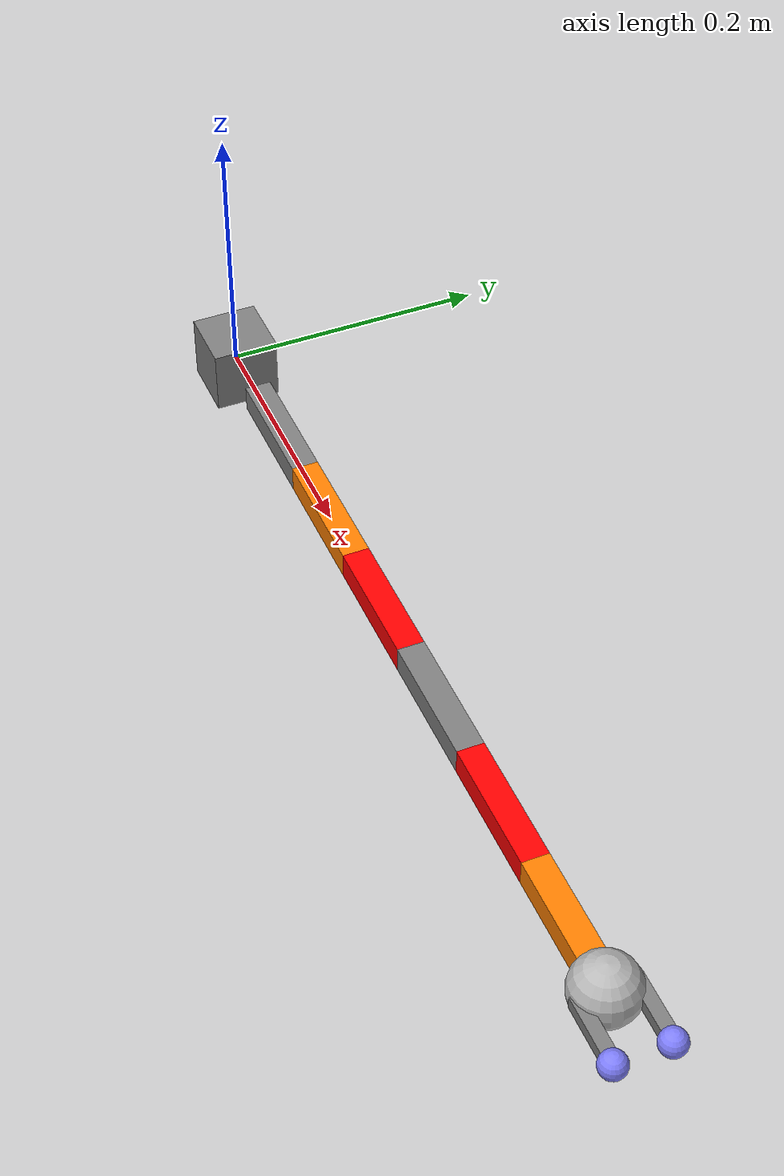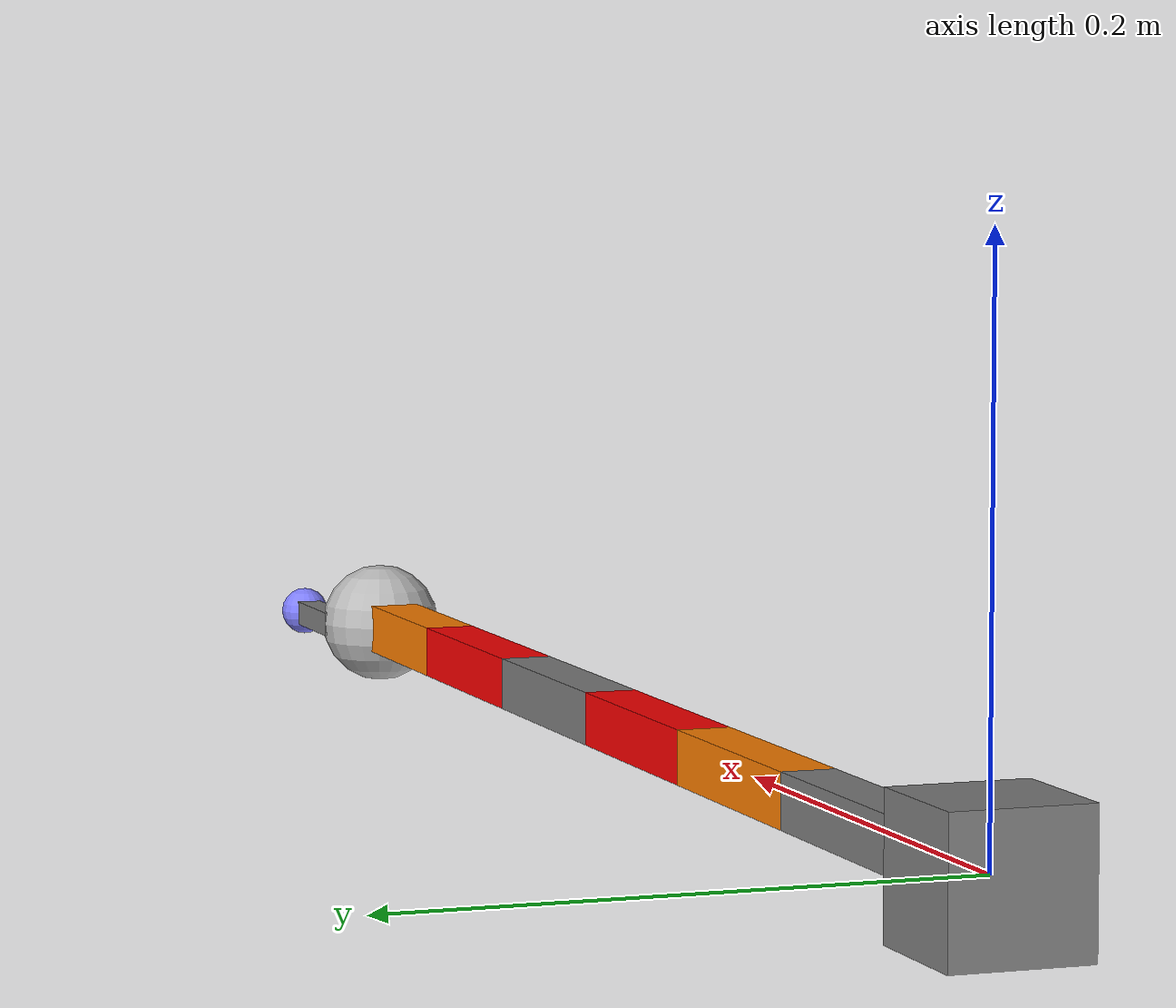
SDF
<?xml version="1.0" ?>
<sdf version='1.5'>
  <model name='ARM'>
    <plugin name="PacerPlugin" filename="libPacerGazeboPlugin.so"/>
    <pose>0 0 0 0 0 0</pose>

    <!-- =============================== LF leg =============================== -->
    <link name='LINK_0'>
      <pose>0 0 0 0 0 0</pose>
      <inertial>
        <mass>1</mass>
        <inertia>
          <ixx>1.5e-5</ixx>
          <ixy>0.0</ixy>
          <ixz>-0.0</ixz>
          <iyy>3e-5</iyy>
          <iyz>-0.0</iyz>
          <izz>3e-5</izz>
        </inertia>
      </inertial>

      <visual name='link_visual'>
        <geometry>
          <box>
            <size>0.05 0.05 0.05</size>
          </box>
        </geometry>
        <material>
          <ambient>0.2 0.2 0.2 1</ambient>
          <diffuse>0.5 0.5 0.5 1</diffuse>
          <specular>0.1 0.1 0.1 1</specular>
          <emissive>0 0 0 0</emissive>
        </material>
      </visual>
    </link>

    <joint name='X_1' type='revolute'>
      <pose>-0.05 0 0 0 0 0</pose>
      <parent>LINK_0</parent>
      <child>LINK_1</child>
      <axis>
        <xyz>1 0 0</xyz>
        <limit>
          <lower>-1e6</lower>
          <upper>1e6</upper>
        </limit>
        <dynamics/>
      </axis>
    </joint>

    <link name='LINK_1'>
      <pose>0.1 0 0 0 0 0</pose>
      <inertial>
        <mass>0.10</mass>
        <inertia>
          <ixx>1.5e-5</ixx>
          <ixy>0.0</ixy>
          <ixz>-0.0</ixz>
          <iyy>3e-5</iyy>
          <iyz>-0.0</iyz>
          <izz>3e-5</izz>
        </inertia>
      </inertial>

      <visual name='link_visual'>
        <geometry>
          <box>
            <size>0.1 0.02 0.02</size>
          </box>
        </geometry>
        <material>
          <ambient>0.2 0.2 0.2 1</ambient>
          <diffuse>0.5 0.5 0.5 1</diffuse>
          <specular>0.1 0.1 0.1 1</specular>
          <emissive>0 0 0 0</emissive>
        </material>
      </visual>
    </link>

    <joint name='Y_2' type='revolute'>
      <pose>-0.05 0 0 0 0 0</pose>
      <parent>LINK_1</parent>
      <child>LINK_2</child>
      <axis>
        <xyz>0 1 0</xyz>
        <limit>
          <lower>-1e6</lower>
          <upper>1e6</upper>
        </limit>
        <dynamics/>
      </axis>
    </joint>

    <link name='LINK_2'>
      <pose>0.2 0 0 0 0 0</pose>
      <inertial>
        <mass>0.10</mass>
        <inertia>
          <ixx>1.083e-5</ixx>
          <ixy>0.0</ixy>
          <ixz>-0.0</ixz>
          <iyy>0.0001233</iyy>
          <iyz>-0.0</iyz>
          <izz>0.001275</izz>
        </inertia>
      </inertial>

      <visual name='link_visual'>
        <geometry>
          <box>
            <size>0.1 0.02 0.02</size>
          </box>
        </geometry>
        <material>
          <ambient>0.2 0.2 0.2 1</ambient>
          <diffuse>1 0.5 0   1</diffuse>
          <specular>0.1 0.1 0.1 1</specular>
          <emissive>0 0 0 0</emissive>
        </material>
      </visual>
    </link>

    <joint name='Z_3' type='revolute'>
      <pose>-0.05 0 0 0 0 0</pose>
      <parent>LINK_2</parent>
      <child>LINK_3</child>
      <axis>
        <xyz>0 0 1</xyz>
        <limit>
          <lower>-1e6</lower>
          <upper>1e6</upper>
        </limit>
        <dynamics/>
      </axis>
    </joint>

    <link name='LINK_3'>
      <pose>0.3 0 0 0 0 0</pose>
      <inertial>
        <mass>0.10</mass>
        <inertia>
          <ixx>1.083e-5</ixx>
          <ixy>0.0</ixy>
          <ixz>-0.0</ixz>
          <iyy>0.0001233</iyy>
          <iyz>-0.0</iyz>
          <izz>0.001275</izz>
        </inertia>
      </inertial>

      <visual name='link_visual'>
        <geometry>
          <box>
            <size>0.1 0.02 0.02</size>
          </box>
        </geometry>
        <material>
          <ambient>0.2 0.2 0.2 1</ambient>
          <diffuse>1 0 0   1</diffuse>
          <specular>0.1 0.1 0.1 1</specular>
          <emissive>0 0 0 0</emissive>
        </material>
      </visual>
    </link>

    <!-- 2nd 3 dof of arm -->

    <joint name='X_4' type='revolute'>
      <pose>-0.05 0 0 0 0 0</pose>
      <parent>LINK_3</parent>
      <child>LINK_4</child>
      <axis>
        <xyz>1 0 0</xyz>
        <limit>
          <lower>-1e6</lower>
          <upper>1e6</upper>
        </limit>
        <dynamics/>
      </axis>
    </joint>

    <link name='LINK_4'>
      <pose>0.4 0 0 0 0 0</pose>
      <inertial>
        <mass>0.10</mass>
        <inertia>
          <ixx>1.5e-5</ixx>
          <ixy>0.0</ixy>
          <ixz>-0.0</ixz>
          <iyy>3e-5</iyy>
          <iyz>-0.0</iyz>
          <izz>3e-5</izz>
        </inertia>
      </inertial>

      <visual name='link_visual'>
        <geometry>
          <box>
            <size>0.1 0.02 0.02</size>
          </box>
        </geometry>
        <material>
          <ambient>0.2 0.2 0.2 1</ambient>
          <diffuse>0.5 0.5 0.5 1</diffuse>
          <specular>0.1 0.1 0.1 1</specular>
          <emissive>0 0 0 0</emissive>
        </material>
      </visual>
    </link>

    <joint name='Y_5' type='revolute'>
      <pose>-0.05 0 0 0 0 0</pose>
      <parent>LINK_4</parent>
      <child>LINK_5</child>
      <axis>
        <xyz>0 1 0</xyz>
        <limit>
          <lower>-1e6</lower>
          <upper>1e6</upper>
        </limit>
        <dynamics/>
      </axis>
    </joint>

    <link name='LINK_5'>
      <pose>0.5 0 0 0 0 0</pose>
      <inertial>
        <mass>0.10</mass>
        <inertia>
          <ixx>1.083e-5</ixx>
          <ixy>0.0</ixy>
          <ixz>-0.0</ixz>
          <iyy>0.0001233</iyy>
          <iyz>-0.0</iyz>
          <izz>0.001275</izz>
        </inertia>
      </inertial>

      <visual name='link_visual'>
        <geometry>
          <box>
            <size>0.1 0.02 0.02</size>
          </box>
        </geometry>
        <material>
          <ambient>0.2 0.2 0.2 1</ambient>
          <diffuse>1 0 0   1</diffuse>
          <specular>0.1 0.1 0.1 1</specular>
          <emissive>0 0 0 0</emissive>
        </material>
      </visual>
    </link>

    <joint name='Z_6' type='revolute'>
      <pose>-0.05 0 0 0 0 0</pose>
      <parent>LINK_5</parent>
      <child>LINK_6</child>
      <axis>
        <xyz>0 0 1</xyz>
        <limit>
          <lower>-1e6</lower>
          <upper>1e6</upper>
        </limit>
        <dynamics/>
      </axis>
    </joint>

    <link name='LINK_6'>
      <pose>0.6 0 0 0 0 0</pose>
      <inertial>
        <mass>0.10</mass>
        <inertia>
          <ixx>1.083e-5</ixx>
          <ixy>0.0</ixy>
          <ixz>-0.0</ixz>
          <iyy>0.0001233</iyy>
          <iyz>-0.0</iyz>
          <izz>0.001275</izz>
        </inertia>
      </inertial>

      <visual name='link_visual'>
        <geometry>
          <box>
            <size>0.1 0.02 0.02</size>
          </box>
        </geometry>
        <material>
          <ambient>0.2 0.2 0.2 1</ambient>
          <diffuse>1 0.5 0   1</diffuse>
          <specular>0.1 0.1 0.1 1</specular>
          <emissive>0 0 0 0</emissive>
        </material>
      </visual>
    </link>

    <joint name='X_7' type='revolute'>
      <pose>0 0 0 0 0 0</pose>
      <parent>LINK_6</parent>
      <child>HAND</child>
      <axis>
        <xyz>1 0 0</xyz>
        <limit>
          <lower>-1e6</lower>
          <upper>1e6</upper>
        </limit>
        <dynamics/>
      </axis>
    </joint>

    <link name='HAND'>
      <pose>0.65 0 0 0 0 0</pose>
      <inertial>
        <pose>0 0 0 0 0 0</pose>
        <mass>0.10</mass>
        <inertia>
          <ixx>3.358e-5</ixx>
          <ixy>0</ixy>
          <ixz>0</ixz>
          <iyy>3.358e-5</iyy>
          <iyz>0</iyz>
          <izz>3.358e-5</izz>
        </inertia>
      </inertial>

      <visual name='HAND_visual'>
        <pose>0 0 0 0 0 0</pose>
        <geometry>
          <sphere>
            <radius>0.025</radius>
          </sphere>
        </geometry>
      </visual>
    </link>

    <joint name='F_00' type='revolute'>
      <pose>-0.05 0 0 0 0 0</pose>
      <parent>HAND</parent>
      <child>FINGER00</child>
      <axis>
        <xyz>0 1 0</xyz>
        <limit>
          <lower>-1e6</lower>
          <upper>1e6</upper>
        </limit>
        <dynamics/>
      </axis>
    </joint>
    <joint name='F_01' type='revolute'>
      <pose>-0.05 0 0 0 0 0</pose>
      <parent>HAND</parent>
      <child>FINGER01</child>
      <axis>
        <xyz>0 1 0</xyz>
        <limit>
          <lower>-1e6</lower>
          <upper>1e6</upper>
        </limit>
        <dynamics/>
      </axis>
    </joint>
    <joint name='F_10' type='revolute'>
      <pose>-0.05 0 0 0 0 0</pose>
      <parent>HAND</parent>
      <child>FINGER10</child>
      <axis>
        <xyz>0 -1 0</xyz>
        <limit>
          <lower>-1e6</lower>
          <upper>1e6</upper>
        </limit>
        <dynamics/>
      </axis>
    </joint>
    <joint name='F_11' type='revolute'>
      <pose>-0.05 0 0 0 0 0</pose>
      <parent>HAND</parent>
      <child>FINGER11</child>
      <axis>
        <xyz>0 -1 0</xyz>
        <limit>
          <lower>-1e6</lower>
          <upper>1e6</upper>
        </limit>
        <dynamics/>
      </axis>
    </joint>

    <link name='FINGER00'>
      <pose>0.70 -0.02 0 0 0 0</pose>
      <inertial>
        <pose>0 0 0 0 0 0</pose>
        <mass>0.10</mass>
        <inertia>
          <ixx>3.358e-5</ixx>
          <ixy>0</ixy>
          <ixz>0</ixz>
          <iyy>3.358e-5</iyy>
          <iyz>0</iyz>
          <izz>3.358e-5</izz>
        </inertia>
      </inertial>

      <visual name='FINGER_tip_visual'>
        <pose>0 0 0 0 0 0</pose>
        <geometry>
          <sphere>
            <radius>0.01</radius>
          </sphere>
        </geometry>
        <material>
          <ambient> 0.2 0.2 0.2 1</ambient>
          <diffuse> 0.5 0.5 1.0 0</diffuse>
          <specular>0.1 0.1 0.1 1</specular>
          <emissive>0 0 0 0</emissive>
        </material>
      </visual>

      <visual name='FINGER_visual'>
        <pose>-0.025 0 0 0 0 0</pose>
        <geometry>
          <box>
            <size>0.05 0.01 0.01</size>
          </box>
        </geometry>
        <material>
          <ambient> 0.2 0.2 0.2 1</ambient>
          <diffuse> 0.5 0.5 0.5 1</diffuse>
          <specular>0.1 0.1 0.1 1</specular>
          <emissive>0 0 0 0</emissive>
        </material>
      </visual>

      <collision name='FINGER_collision'>
        <pose>0 0 0 0 0 0</pose>
        <geometry>
          <sphere>
            <radius>0.01</radius>
          </sphere>
        </geometry>
        <surface>
          <restitution_coefficient>0</restitution_coefficient>
          <friction>
            <ode>
              <mu>100</mu>
              <mu2>100</mu2>
            </ode>
          </friction>
        </surface>
      </collision>

      <sensor name='FINGER_contact' type='contact'>
        <contact>
          <collision>FINGER_collision</collision>
        </contact>
        <update_rate>1000</update_rate>
      </sensor>
    </link>
    <link name='FINGER01'>
      <pose>0.70 0.02 0 0 0 0</pose>
      <inertial>
        <pose>0 0 0 0 0 0</pose>
        <mass>0.10</mass>
        <inertia>
          <ixx>3.358e-5</ixx>
          <ixy>0</ixy>
          <ixz>0</ixz>
          <iyy>3.358e-5</iyy>
          <iyz>0</iyz>
          <izz>3.358e-5</izz>
        </inertia>
      </inertial>

      <visual name='FINGER_tip_visual'>
        <pose>0 0 0 0 0 0</pose>
        <geometry>
          <sphere>
            <radius>0.01</radius>
          </sphere>
        </geometry>
        <material>
          <ambient> 0.2 0.2 0.2 1</ambient>
          <diffuse> 0.5 0.5 1.0 0</diffuse>
          <specular>0.1 0.1 0.1 1</specular>
          <emissive>0 0 0 0</emissive>
        </material>
      </visual>

      <visual name='FINGER_visual'>
        <pose>-0.025 0 0 0 0 0</pose>
        <geometry>
          <box>
            <size>0.05 0.01 0.01</size>
          </box>
        </geometry>
        <material>
          <ambient> 0.2 0.2 0.2 1</ambient>
          <diffuse> 0.5 0.5 0.5 1</diffuse>
          <specular>0.1 0.1 0.1 1</specular>
          <emissive>0 0 0 0</emissive>
        </material>
      </visual>

      <collision name='FINGER_collision'>
        <pose>0 0 0 0 0 0</pose>
        <geometry>
          <sphere>
            <radius>0.01</radius>
          </sphere>
        </geometry>
        <surface>
          <restitution_coefficient>0</restitution_coefficient>
          <friction>
            <ode>
              <mu>100</mu>
              <mu2>100</mu2>
            </ode>
          </friction>
        </surface>
      </collision>

      <sensor name='FINGER_contact' type='contact'>
        <contact>
          <collision>FINGER_collision</collision>
        </contact>
        <update_rate>1000</update_rate>
      </sensor>
    </link>
    <link name='FINGER10'>
      <pose>0.70 -0.02 0 0 0 0</pose>
      <inertial>
        <pose>0 0 0 0 0 0</pose>
        <mass>0.10</mass>
        <inertia>
          <ixx>3.358e-5</ixx>
          <ixy>0</ixy>
          <ixz>0</ixz>
          <iyy>3.358e-5</iyy>
          <iyz>0</iyz>
          <izz>3.358e-5</izz>
        </inertia>
      </inertial>

      <visual name='FINGER_tip_visual'>
        <pose>0 0 0 0 0 0</pose>
        <geometry>
          <sphere>
            <radius>0.01</radius>
          </sphere>
        </geometry>
        <material>
          <ambient> 0.2 0.2 0.2 1</ambient>
          <diffuse> 0.5 0.5 1.0 0</diffuse>
          <specular>0.1 0.1 0.1 1</specular>
          <emissive>0 0 0 0</emissive>
        </material>
      </visual>

      <visual name='FINGER_visual'>
        <pose>-0.025 0 0 0 0 0</pose>
        <geometry>
          <box>
            <size>0.05 0.01 0.01</size>
          </box>
        </geometry>
        <material>
          <ambient> 0.2 0.2 0.2 1</ambient>
          <diffuse> 0.5 0.5 0.5 1</diffuse>
          <specular>0.1 0.1 0.1 1</specular>
          <emissive>0 0 0 0</emissive>
        </material>
      </visual>

      <collision name='FINGER_collision'>
        <pose>0 0 0 0 0 0</pose>
        <geometry>
          <sphere>
            <radius>0.01</radius>
          </sphere>
        </geometry>
        <surface>
          <restitution_coefficient>0</restitution_coefficient>
          <friction>
            <ode>
              <mu>100</mu>
              <mu2>100</mu2>
            </ode>
          </friction>
        </surface>
      </collision>

      <sensor name='FINGER_contact' type='contact'>
        <contact>
          <collision>FINGER_collision</collision>
        </contact>
        <update_rate>1000</update_rate>
      </sensor>
    </link>
    <link name='FINGER11'>
      <pose>0.70 0.02 0 0 0 0</pose>
      <inertial>
        <pose>0 0 0 0 0 0</pose>
        <mass>0.10</mass>
        <inertia>
          <ixx>3.358e-5</ixx>
          <ixy>0</ixy>
          <ixz>0</ixz>
          <iyy>3.358e-5</iyy>
          <iyz>0</iyz>
          <izz>3.358e-5</izz>
        </inertia>
      </inertial>

      <visual name='FINGER_tip_visual'>
        <pose>0 0 0 0 0 0</pose>
        <geometry>
          <sphere>
            <radius>0.01</radius>
          </sphere>
        </geometry>
        <material>
          <ambient> 0.2 0.2 0.2 1</ambient>
          <diffuse> 0.5 0.5 1.0 0</diffuse>
          <specular>0.1 0.1 0.1 1</specular>
          <emissive>0 0 0 0</emissive>
        </material>
      </visual>

      <visual name='FINGER_visual'>
        <pose>-0.025 0 0 0 0 0</pose>
        <geometry>
          <box>
            <size>0.05 0.01 0.01</size>
          </box>
        </geometry>
        <material>
          <ambient> 0.2 0.2 0.2 1</ambient>
          <diffuse> 0.5 0.5 0.5 1</diffuse>
          <specular>0.1 0.1 0.1 1</specular>
          <emissive>0 0 0 0</emissive>
        </material>
      </visual>

      <collision name='FINGER_collision'>
        <pose>0 0 0 0 0 0</pose>
        <geometry>
          <sphere>
            <radius>0.01</radius>
          </sphere>
        </geometry>
        <surface>
          <restitution_coefficient>0</restitution_coefficient>
          <friction>
            <ode>
              <mu>100</mu>
              <mu2>100</mu2>
            </ode>
          </friction>
        </surface>
      </collision>

      <sensor name='FINGER_contact' type='contact'>
        <contact>
          <collision>FINGER_collision</collision>
        </contact>
        <update_rate>1000</update_rate>
      </sensor>
    </link>

  </model>
</sdf>
